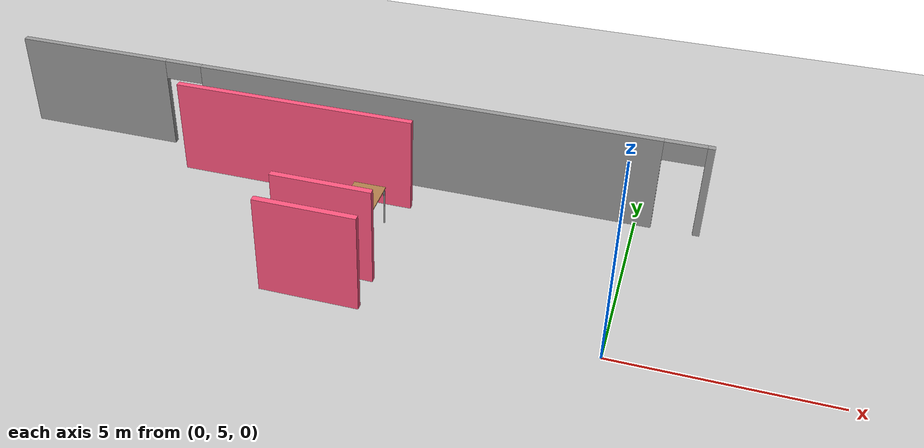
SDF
<sdf version="1.6">
 <world name="default">
  <model name="ground_plane">
   <static>1</static>
   <link name="link">
    <collision name="collision">
     <geometry><plane><normal>0 0 1</normal><size>100 100</size></plane></geometry>
     <surface><friction><ode><mu>100</mu><mu2>50</mu2></ode></friction></surface>
    </collision>
    <visual name="visual">
     <cast_shadows>0</cast_shadows>
     <geometry><plane><normal>0 0 1</normal><size>100 100</size></plane></geometry>
     <material>
      <script><uri>file://media/materials/scripts/gazebo.material</uri><name>Gazebo/Grey</name></script>
     </material>
    </visual>
   </link>
  </model>
  <model name="myWorld">
   <pose>-1.5 0 0 0 -0 0</pose>
   <link name="Wall_42">
    <pose>-6 10 0 0 -0 0</pose>
    <visual name="Wall_42_Visual_0">
     <pose>-6.9875 0 1.25 0 -0 0</pose>
     <geometry><box><size>4.175 0.15 2.5</size></box></geometry>
     <material>
      <script><uri>file://media/materials/scripts/gazebo.material</uri><name>Gazebo/Grey</name></script>
      <ambient>1 1 1 1</ambient>
     </material>
     <meta><layer>0</layer></meta>
    </visual>
    <collision name="Wall_42_Collision_0">
     <geometry><box><size>4.175 0.15 2.5</size></box></geometry>
     <pose>-6.9875 0 1.25 0 -0 0</pose>
    </collision>
    <visual name="Wall_42_Visual_1">
     <pose>2 0 1.25 0 -0 0</pose>
     <geometry><box><size>11.8 0.15 2.5</size></box></geometry>
     <material>
      <script><uri>file://media/materials/scripts/gazebo.material</uri><name>Gazebo/Grey</name></script>
      <ambient>1 1 1 1</ambient>
     </material>
     <meta><layer>0</layer></meta>
    </visual>
    <collision name="Wall_42_Collision_1">
     <geometry><box><size>11.8 0.15 2.5</size></box></geometry>
     <pose>2 0 1.25 0 -0 0</pose>
    </collision>
    <visual name="Wall_42_Visual_2">
     <pose>8.9875 0 1.25 0 -0 0</pose>
     <geometry><box><size>0.175 0.15 2.5</size></box></geometry>
     <material>
      <script><uri>file://media/materials/scripts/gazebo.material</uri><name>Gazebo/Grey</name></script>
      <ambient>1 1 1 1</ambient>
     </material>
     <meta><layer>0</layer></meta>
    </visual>
    <collision name="Wall_42_Collision_2">
     <geometry><box><size>0.175 0.15 2.5</size></box></geometry>
     <pose>8.9875 0 1.25 0 -0 0</pose>
    </collision>
    <visual name="Wall_42_Visual_3">
     <pose>-4.4 0 2.25 0 -0 0</pose>
     <geometry><box><size>1 0.15 0.5</size></box></geometry>
     <material>
      <script><uri>file://media/materials/scripts/gazebo.material</uri><name>Gazebo/Grey</name></script>
      <ambient>1 1 1 1</ambient>
     </material>
     <meta><layer>0</layer></meta>
    </visual>
    <collision name="Wall_42_Collision_3">
     <geometry><box><size>1 0.15 0.5</size></box></geometry>
     <pose>-4.4 0 2.25 0 -0 0</pose>
    </collision>
    <visual name="Wall_42_Visual_4">
     <pose>8.4 0 2.25 0 -0 0</pose>
     <geometry><box><size>1 0.15 0.5</size></box></geometry>
     <material>
      <script><uri>file://media/materials/scripts/gazebo.material</uri><name>Gazebo/Grey</name></script>
      <ambient>1 1 1 1</ambient>
     </material>
     <meta><layer>0</layer></meta>
    </visual>
    <collision name="Wall_42_Collision_4">
     <geometry><box><size>1 0.15 0.5</size></box></geometry>
     <pose>8.4 0 2.25 0 -0 0</pose>
    </collision>
   </link>
   <link name="Wall_92">
    <collision name="Wall_92_Collision">
     <geometry><box><size>2.4 0.15 2.5</size></box></geometry>
     <pose>0 0 1.25 0 -0 0</pose>
    </collision>
    <visual name="Wall_92_Visual">
     <pose>0 0 1.25 0 -0 0</pose>
     <geometry><box><size>2.4 0.15 2.5</size></box></geometry>
     <material>
      <script><uri>file://media/materials/scripts/gazebo.material</uri><name>Gazebo/Grey</name></script>
      <ambient>1 0.333333 0.498039 1</ambient>
     </material>
     <meta><layer>0</layer></meta>
    </visual>
    <pose>-5.125 5 0 0 -0 0</pose>
   </link>
   <link name="Wall_96">
    <collision name="Wall_96_Collision">
     <geometry><box><size>6.15 0.15 2.5</size></box></geometry>
     <pose>0 0 1.25 0 -0 0</pose>
    </collision>
    <visual name="Wall_96_Visual">
     <pose>0 0 1.25 0 -0 0</pose>
     <geometry><box><size>6.15 0.15 2.5</size></box></geometry>
     <material>
      <script><uri>file://media/materials/scripts/gazebo.material</uri><name>Gazebo/Grey</name></script>
      <ambient>1 0.333333 0.498039 1</ambient>
     </material>
     <meta><layer>0</layer></meta>
    </visual>
    <pose>-7 9 0 0 -0 0</pose>
   </link>
   <link name="Wall_98">
    <collision name="Wall_98_Collision">
     <geometry><box><size>2.4 0.15 2.5</size></box></geometry>
     <pose>0 0 1.25 0 -0 0</pose>
    </collision>
    <visual name="Wall_98_Visual">
     <pose>0 0 1.25 0 -0 0</pose>
     <geometry><box><size>2.4 0.15 2.5</size></box></geometry>
     <material>
      <script><uri>file://media/materials/scripts/gazebo.material</uri><name>Gazebo/Grey</name></script>
      <ambient>1 0.333333 0.498039 1</ambient>
     </material>
     <meta><layer>0</layer></meta>
    </visual>
    <pose>-5.125 6 0 0 -0 3.14159</pose>
   </link>
   <static>1</static>
  </model>
  <model name="table_0_clone">
   <static>1</static>
   <link name="link">
    <collision name="surface">
     <pose>0 0 1 0 -0 0</pose>
     <geometry><box><size>1.5 0.8 0.03</size></box></geometry>
     <surface><friction><ode><mu>0.6</mu><mu2>0.6</mu2></ode></friction></surface>
    </collision>
    <visual name="visual1">
     <pose>0 0 1 0 -0 0</pose>
     <geometry><box><size>1.5 0.8 0.03</size></box></geometry>
     <material>
      <script><uri>file://media/materials/scripts/gazebo.material</uri><name>Gazebo/Wood</name></script>
     </material>
    </visual>
    <collision name="front_left_leg">
     <pose>0.68 0.38 0.5 0 -0 0</pose>
     <geometry><cylinder><radius>0.02</radius><length>1</length></cylinder></geometry>
    </collision>
    <visual name="front_left_leg">
     <pose>0.68 0.38 0.5 0 -0 0</pose>
     <geometry><cylinder><radius>0.02</radius><length>1</length></cylinder></geometry>
     <material>
      <script><uri>file://media/materials/scripts/gazebo.material</uri><name>Gazebo/Grey</name></script>
     </material>
    </visual>
    <collision name="front_right_leg">
     <pose>0.68 -0.38 0.5 0 -0 0</pose>
     <geometry><cylinder><radius>0.02</radius><length>1</length></cylinder></geometry>
    </collision>
    <visual name="front_right_leg">
     <pose>0.68 -0.38 0.5 0 -0 0</pose>
     <geometry><cylinder><radius>0.02</radius><length>1</length></cylinder></geometry>
     <material>
      <script><uri>file://media/materials/scripts/gazebo.material</uri><name>Gazebo/Grey</name></script>
     </material>
    </visual>
    <collision name="back_right_leg">
     <pose>-0.68 -0.38 0.5 0 -0 0</pose>
     <geometry><cylinder><radius>0.02</radius><length>1</length></cylinder></geometry>
    </collision>
    <visual name="back_right_leg">
     <pose>-0.68 -0.38 0.5 0 -0 0</pose>
     <geometry><cylinder><radius>0.02</radius><length>1</length></cylinder></geometry>
     <material>
      <script><uri>file://media/materials/scripts/gazebo.material</uri><name>Gazebo/Grey</name></script>
     </material>
    </visual>
    <collision name="back_left_leg">
     <pose>-0.68 0.38 0.5 0 -0 0</pose>
     <geometry><cylinder><radius>0.02</radius><length>1</length></cylinder></geometry>
    </collision>
    <visual name="back_left_leg">
     <pose>-0.68 0.38 0.5 0 -0 0</pose>
     <geometry><cylinder><radius>0.02</radius><length>1</length></cylinder></geometry>
     <material>
      <script><uri>file://media/materials/scripts/gazebo.material</uri><name>Gazebo/Grey</name></script>
     </material>
    </visual>
   </link>
   <pose>-6.25 7.5 0 0 -0 1.5708</pose>
  </model>
 </world>
</sdf>
